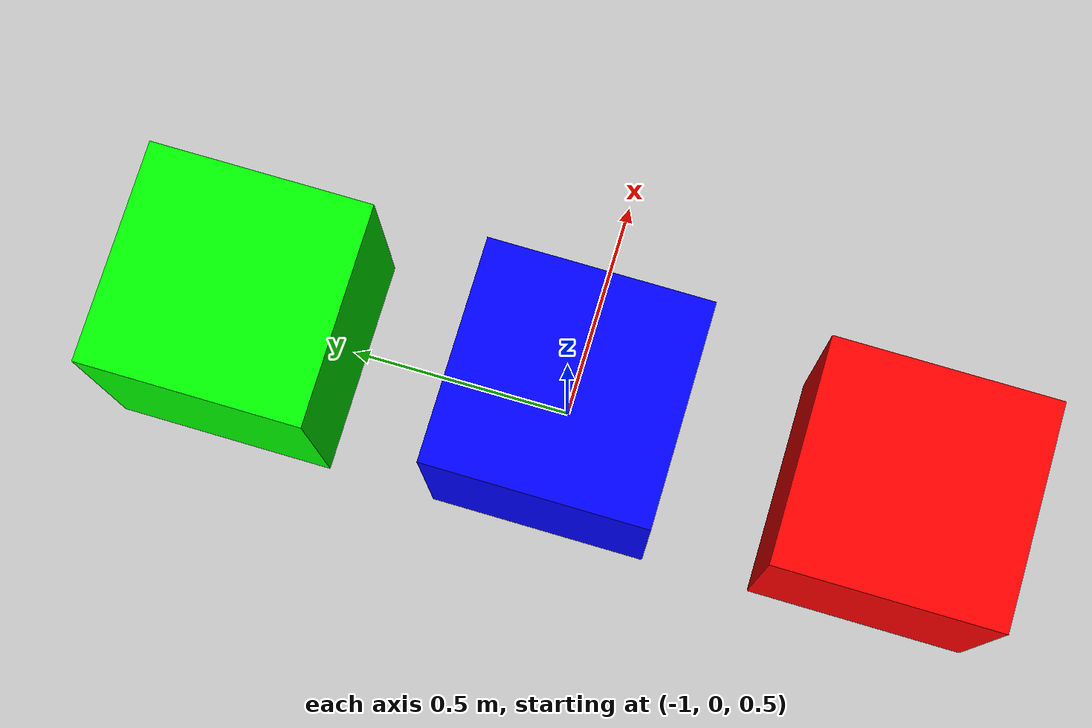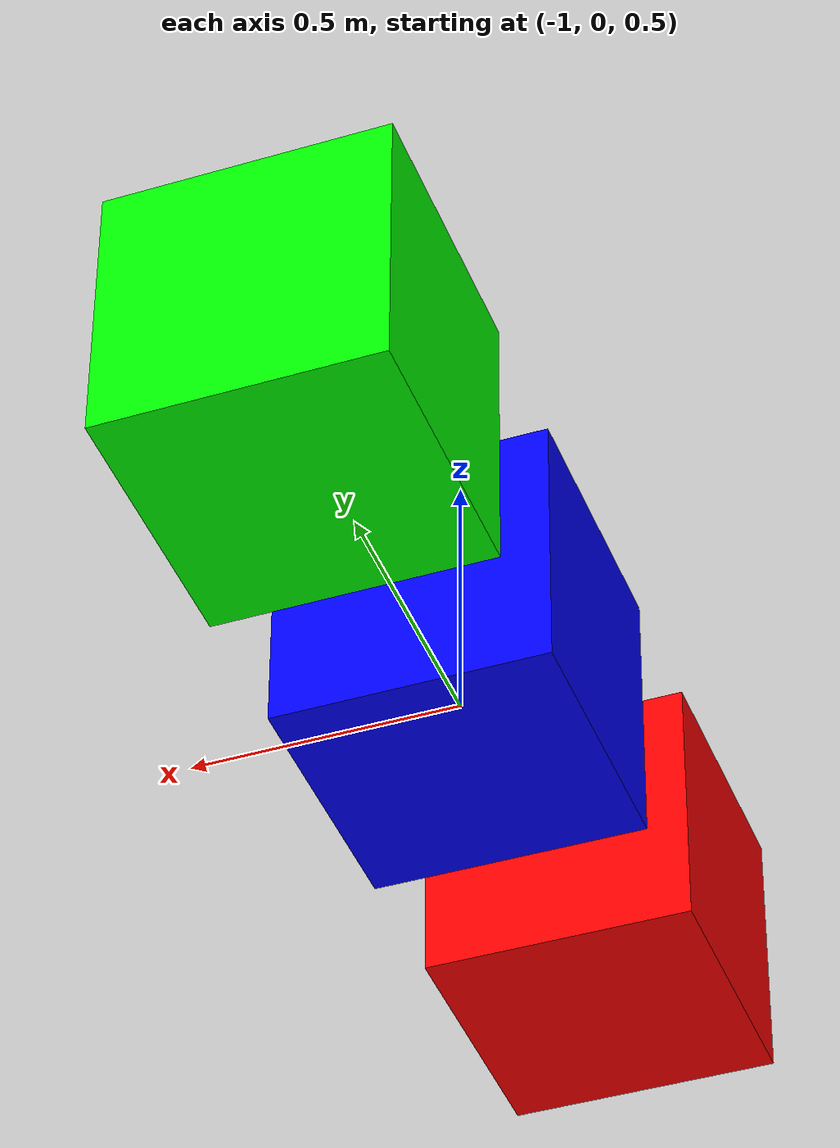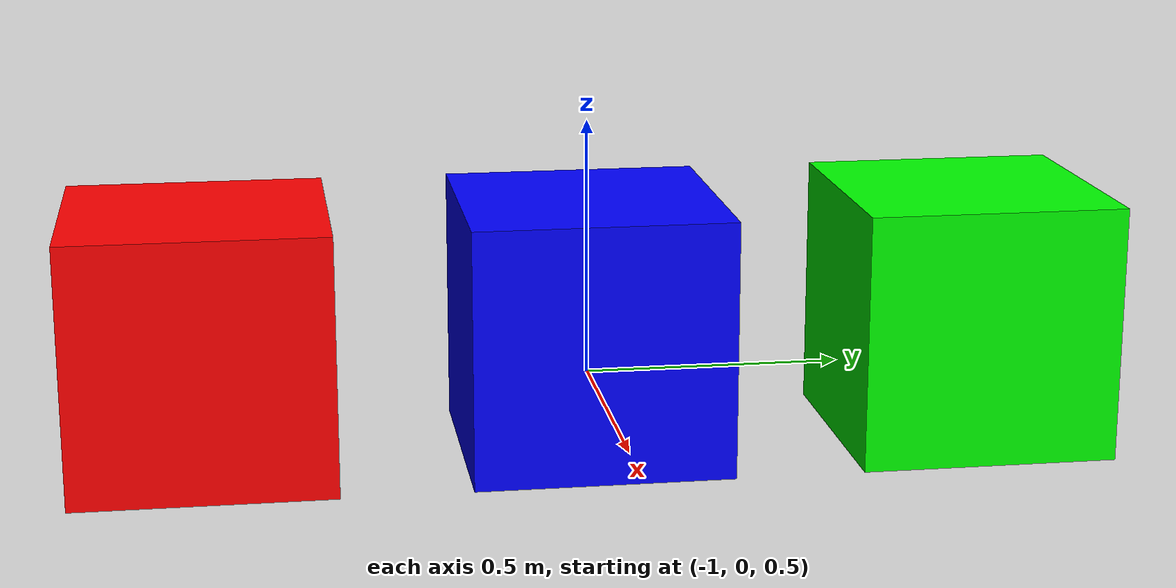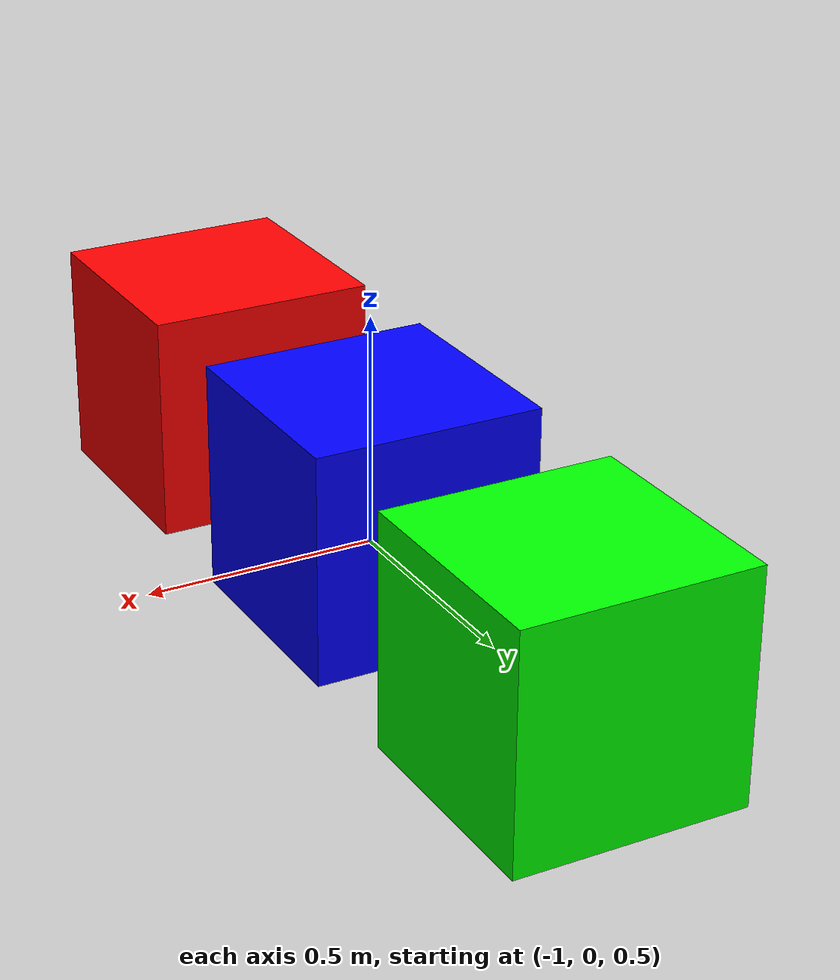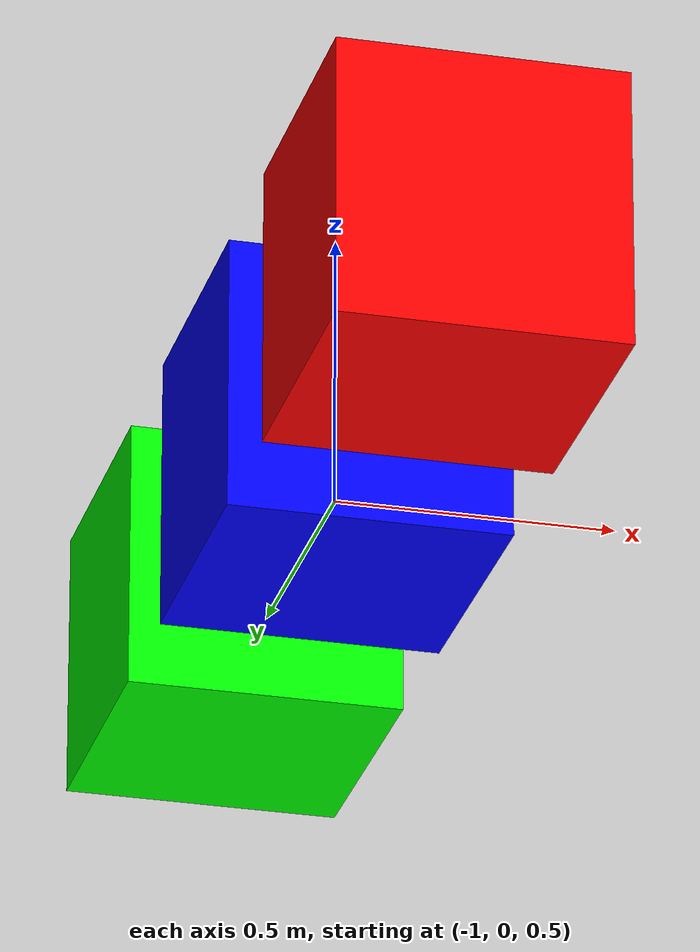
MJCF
<mujoco>
    <compiler assetdir="assets" angle="degree" coordinate="local" inertiafromgeom="true" />
    <statistic center="0 0 0.1" extent="0.6" meansize=".05"/>
    <visual>
        <rgba haze="0.15 0.25 0.35 1"/>
        <global azimuth="-20" elevation="-20" ellipsoidinertia="true"/>
        <map znear="0.01" zfar="100"/>
    </visual>

    <asset>
        <texture name="skybox" type="skybox" builtin="gradient" rgb1="0.3 0.5 0.7" rgb2="0 0 0" width="512" height="3072"/>
        <texture type="2d" name="groundplane" builtin="checker" mark="edge" rgb1="0.2 0.3 0.4" rgb2="0.1 0.2 0.3" markrgb="0.8 0.8 0.8" width="300" height="300"/>
        <material name="groundplane" texture="groundplane" texuniform="true" texrepeat="5 5" reflectance="0.2"/>
    </asset>

    <worldbody>
        <light pos="0 0 1.5" dir="0 0 -1" directional="true"/>
        <body name="body" pos="0 0 0.1">
            <geom name="box1" type="box" size=" 0.25 0.25 0.25" pos="-1 0 0.5" condim="1" rgba="0 0 1 1" quat="1 0 0 0"/>
            <geom name="box2" type="box" size=" 0.25 0.25 0.25" pos="-1 0.75 0.5" condim="1" rgba="0 1 0 1" quat="1 0 0 0"/>
            <geom name="box3" type="box" size=" 0.25 0.25 0.25" pos="-1 -0.75 0.5" rgba="1 0 0 1" condim="1" quat="1 0 0 0"/>
        </body>
    </worldbody>
</mujoco>
